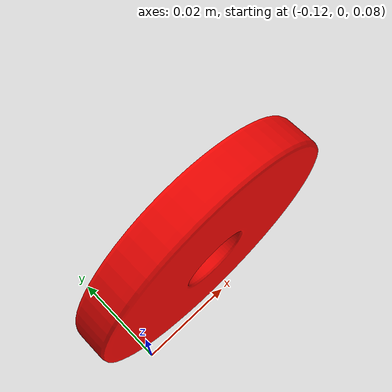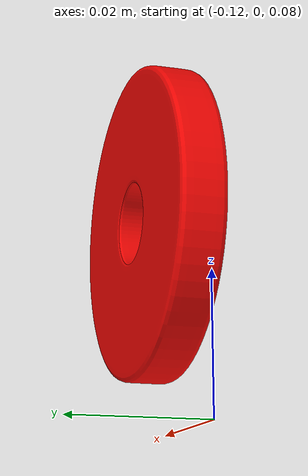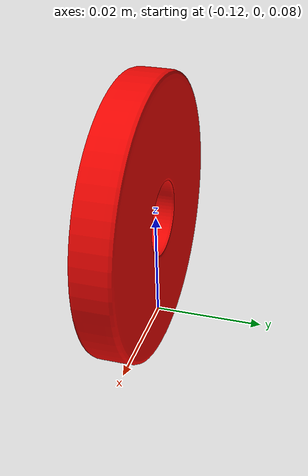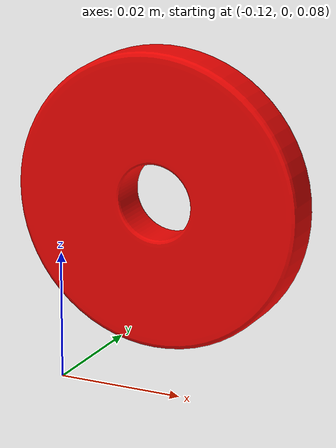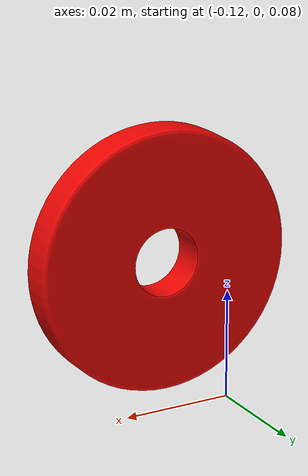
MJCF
<mujoco model="circle">
  <compiler angle="radian" meshdir="assets" texturedir="assets" autolimits="true"/>
  <default>
    <default class="visual">
      <geom group="2" type="mesh" contype="0" conaffinity="0" mass="0.4"/>
    </default>
    <default class="collision">
      <geom group="3" type="mesh" density="500" mass="0" solimp="0.95 0.99 0.001" solref="0.004 1"/>
    </default>
  </default>
  <asset>
    <material name="Color_Red" specular="0.5" shininess="0.25" rgba="0.941257 0.021256 0.009260 1.000000"/>
    <mesh file="circle.obj"/>
    <mesh file="circle_collision_0.obj"/>
    <mesh file="circle_collision_1.obj"/>
    <mesh file="circle_collision_2.obj"/>
    <mesh file="circle_collision_3.obj"/>
    <mesh file="circle_collision_4.obj"/>
    <mesh file="circle_collision_5.obj"/>
    <mesh file="circle_collision_6.obj"/>
    <mesh file="circle_collision_7.obj"/>
  </asset>
  <worldbody>
    <body name="circle">
      <geom material="Color_Red" mesh="circle" class="visual"/>

      <body name="hole_site">
      <geom name="hole_site" type="cylinder" size=".006 .002 .04" pos="-.105 0.004 0.11" euler="1.5708 0 0" rgba="1 1 0 0" contype="0"
      conaffinity="0"
      friction="0 0 0"
      solimp="0.99 0.99 0.000001"
      solref="0.000001 1"
      density="0"
      />
      </body>
      <geom mesh="circle_collision_0" rgba="0.9498307676056398 0.8502444243097724 0.28513925190068734 1" class="collision"/>
      <geom mesh="circle_collision_1" rgba="0.49191048805914217 0.9766924192863768 0.632216020819066 1" class="collision"/>
      <geom mesh="circle_collision_2" rgba="0.283177996115369 0.5970082944939628 0.5125334253900818 1" class="collision"/>
      <geom mesh="circle_collision_3" rgba="0.7248798245297251 0.0915824584250522 0.2851652877558126 1" class="collision"/>
      <geom mesh="circle_collision_4" rgba="0.9140863988218713 0.4610989729373687 0.5410591518301704 1" class="collision"/>
      <geom mesh="circle_collision_5" rgba="0.6691176290272534 0.8522178860453514 0.49987197693424845 1" class="collision"/>
      <geom mesh="circle_collision_6" rgba="0.9245084966495208 0.06723861005291298 0.6044714649096327 1" class="collision"/>
      <geom mesh="circle_collision_7" rgba="0.7247452162405406 0.33713668813704567 0.7024046017163321 1" class="collision"/>
    </body>
  </worldbody>
</mujoco>
